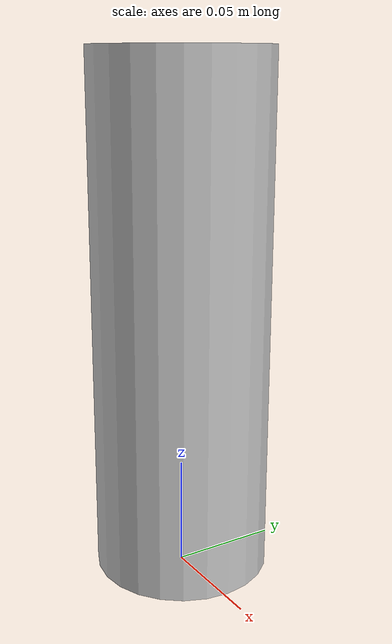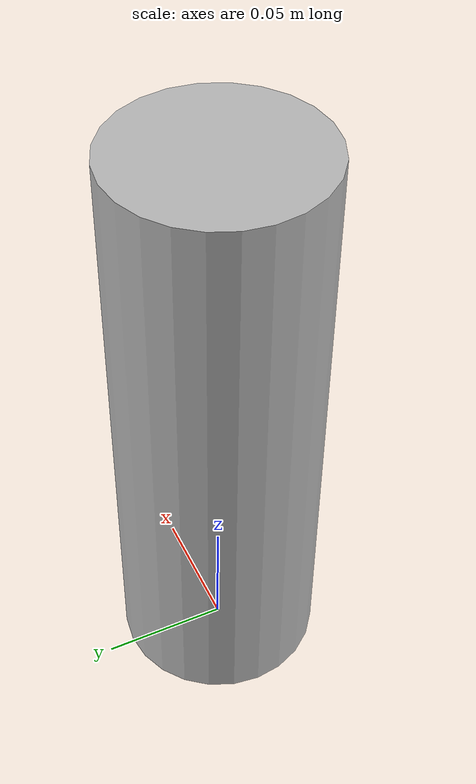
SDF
<sdf version="1.4">
  <model name="pringles2">
    <static>0</static>
    <link name="link">
      <inertial>
        <mass>0.25</mass>
        <inertia>
          <ixx>0.000000</ixx>
          <ixy>0.000000</ixy>
          <ixz>0.000000</ixz>
          <iyy>0.000000</iyy>
          <iyz>0.000000</iyz>
          <izz>0.000000</izz>
        </inertia>
      </inertial>
      <collision name="collision">
        <pose>0 0 0.12 3.1416 0 0</pose>
        <geometry>
          <cylinder>
            <radius>0.04</radius>
            <length>0.235</length>
          </cylinder>
        </geometry>
        <surface>
          <bounce />
          <friction>
            <ode />
          </friction>
          <contact>
            <ode />
          </contact>
        </surface>
      </collision>
      <visual name="visual">
        <pose>0 0 0.12 3.1416 0 0</pose>
        <geometry>
          <cylinder>
            <radius>0.04</radius>
            <length>0.235</length>
          </cylinder>
        </geometry>
        <material>
          <script>
	      <uri>model://pringles2/material/scripts</uri>
	      <uri>model://pringles2/material/textures</uri>
              <name>Custom/pringles2</name>
          </script>
        </material>
      </visual>
      <velocity_decay>
        <linear>0.000000</linear>
        <angular>0.000000</angular>
      </velocity_decay>
      <self_collide>0</self_collide>
      <kinematic>0</kinematic>
      <gravity>1</gravity>
    </link>
  </model>
</sdf>
